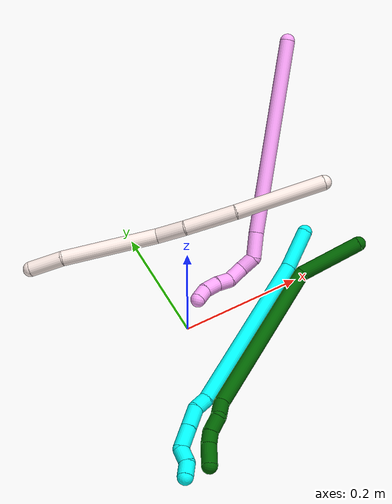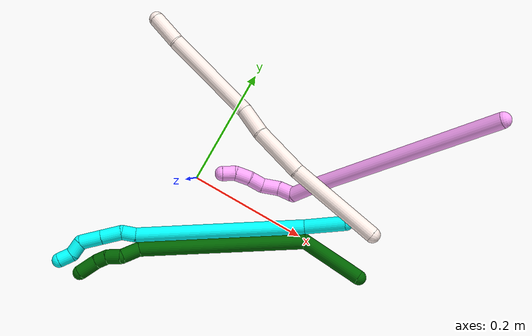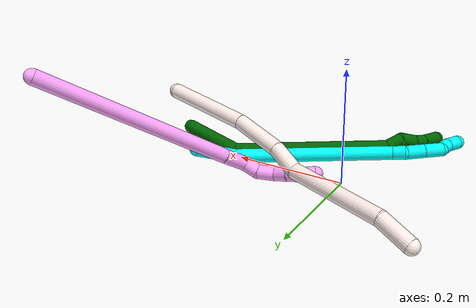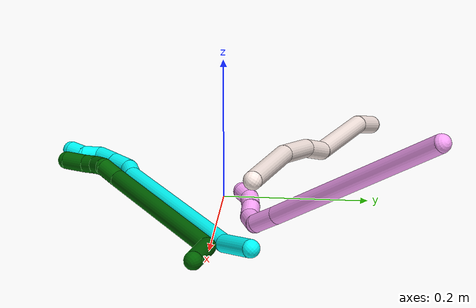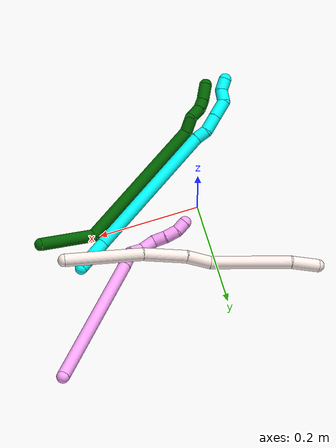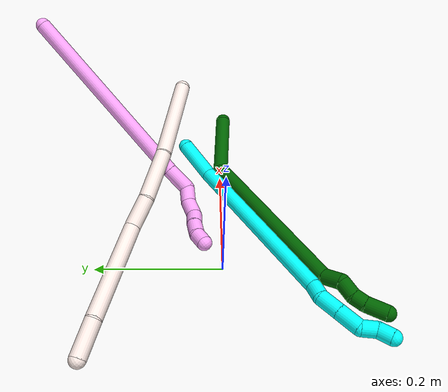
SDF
<sdf version="1.7">
 <world name="default">
  <model name="3">
   <static>0</static>
   <link name="3">
    <collision name="collision-cylinder-e_1_1_4">
     <pose>-0.024623 -0.022757 0.010895 1.12429 -0.773227 -0.502079</pose>
     <geometry><cylinder><radius>0.0125</radius><length>0.070508</length></cylinder></geometry>
     <surface>
      <friction><ode><mu>1.16</mu><mu2>1.16</mu2><slip1>0</slip1><slip2>0</slip2></ode></friction>
      <contact><ode><kp>1e+06</kp><kd>1</kd><max_vel>0</max_vel><min_depth>0.001</min_depth></ode></contact>
     </surface>
    </collision>
    <visual name="visual-cylinder-e_1_1_4">
     <pose>-0.024623 -0.022757 0.010895 1.12429 -0.773227 -0.502079</pose>
     <geometry><cylinder><radius>0.0125</radius><length>0.070508</length></cylinder></geometry>
     <material><ambient>0.003922 1 0.996078 1</ambient></material>
    </visual>
    <collision name="collision-cylinder-e_2_4_5">
     <pose>-0.158016 -0.111144 0.086388 0.793329 -0.868251 -0.383618</pose>
     <geometry><cylinder><radius>0.0125</radius><length>0.285034</length></cylinder></geometry>
     <surface>
      <friction><ode><mu>1.16</mu><mu2>1.16</mu2><slip1>0</slip1><slip2>0</slip2></ode></friction>
      <contact><ode><kp>1e+06</kp><kd>1</kd><max_vel>0</max_vel><min_depth>0.001</min_depth></ode></contact>
     </surface>
    </collision>
    <visual name="visual-cylinder-e_2_4_5">
     <pose>-0.158016 -0.111144 0.086388 0.793329 -0.868251 -0.383618</pose>
     <geometry><cylinder><radius>0.0125</radius><length>0.285034</length></cylinder></geometry>
     <material><ambient>0.003922 1 0.996078 1</ambient></material>
    </visual>
    <collision name="collision-cylinder-e_3_5_6">
     <pose>-0.277542 -0.17974 0.155494 0.581822 -1.10595 -0.365465</pose>
     <geometry><cylinder><radius>0.0125</radius><length>0.024068</length></cylinder></geometry>
     <surface>
      <friction><ode><mu>1.16</mu><mu2>1.16</mu2><slip1>0</slip1><slip2>0</slip2></ode></friction>
      <contact><ode><kp>1e+06</kp><kd>1</kd><max_vel>0</max_vel><min_depth>0.001</min_depth></ode></contact>
     </surface>
    </collision>
    <visual name="visual-cylinder-e_3_5_6">
     <pose>-0.277542 -0.17974 0.155494 0.581822 -1.10595 -0.365465</pose>
     <geometry><cylinder><radius>0.0125</radius><length>0.024068</length></cylinder></geometry>
     <material><ambient>0.003922 1 0.996078 1</ambient></material>
    </visual>
    <collision name="collision-cylinder-e_4_6_7">
     <pose>-0.299281 -0.192443 0.169395 0.803389 -0.681787 -0.299133</pose>
     <geometry><cylinder><radius>0.0125</radius><length>0.034853</length></cylinder></geometry>
     <surface>
      <friction><ode><mu>1.16</mu><mu2>1.16</mu2><slip1>0</slip1><slip2>0</slip2></ode></friction>
      <contact><ode><kp>1e+06</kp><kd>1</kd><max_vel>0</max_vel><min_depth>0.001</min_depth></ode></contact>
     </surface>
    </collision>
    <visual name="visual-cylinder-e_4_6_7">
     <pose>-0.299281 -0.192443 0.169395 0.803389 -0.681787 -0.299133</pose>
     <geometry><cylinder><radius>0.0125</radius><length>0.034853</length></cylinder></geometry>
     <material><ambient>0.003922 1 0.996078 1</ambient></material>
    </visual>
    <collision name="collision-cylinder-e_5_7_8">
     <pose>-0.321867 -0.212575 0.188661 0.811158 -0.680505 -0.301713</pose>
     <geometry><cylinder><radius>0.0125</radius><length>0.036885</length></cylinder></geometry>
     <surface>
      <friction><ode><mu>1.16</mu><mu2>1.16</mu2><slip1>0</slip1><slip2>0</slip2></ode></friction>
      <contact><ode><kp>1e+06</kp><kd>1</kd><max_vel>0</max_vel><min_depth>0.001</min_depth></ode></contact>
     </surface>
    </collision>
    <visual name="visual-cylinder-e_5_7_8">
     <pose>-0.321867 -0.212575 0.188661 0.811158 -0.680505 -0.301713</pose>
     <geometry><cylinder><radius>0.0125</radius><length>0.036885</length></cylinder></geometry>
     <material><ambient>0.003922 1 0.996078 1</ambient></material>
    </visual>
    <collision name="collision-cylinder-e_6_8_9">
     <pose>-0.333058 -0.231699 0.207286 0.784062 0.033322 0.013778</pose>
     <geometry><cylinder><radius>0.0125</radius><length>0.02474</length></cylinder></geometry>
     <surface>
      <friction><ode><mu>1.16</mu><mu2>1.16</mu2><slip1>0</slip1><slip2>0</slip2></ode></friction>
      <contact><ode><kp>1e+06</kp><kd>1</kd><max_vel>0</max_vel><min_depth>0.001</min_depth></ode></contact>
     </surface>
    </collision>
    <visual name="visual-cylinder-e_6_8_9">
     <pose>-0.333058 -0.231699 0.207286 0.784062 0.033322 0.013778</pose>
     <geometry><cylinder><radius>0.0125</radius><length>0.02474</length></cylinder></geometry>
     <material><ambient>0.003922 1 0.996078 1</ambient></material>
    </visual>
    <collision name="collision-cylinder-e_7_9_2">
     <pose>-0.338218 -0.24729 0.22409 0.70577 -0.484834 -0.181646</pose>
     <geometry><cylinder><radius>0.0125</radius><length>0.023911</length></cylinder></geometry>
     <surface>
      <friction><ode><mu>1.16</mu><mu2>1.16</mu2><slip1>0</slip1><slip2>0</slip2></ode></friction>
      <contact><ode><kp>1e+06</kp><kd>1</kd><max_vel>0</max_vel><min_depth>0.001</min_depth></ode></contact>
     </surface>
    </collision>
    <visual name="visual-cylinder-e_7_9_2">
     <pose>-0.338218 -0.24729 0.22409 0.70577 -0.484834 -0.181646</pose>
     <geometry><cylinder><radius>0.0125</radius><length>0.023911</length></cylinder></geometry>
     <material><ambient>0.003922 1 0.996078 1</ambient></material>
    </visual>
    <collision name="collision-sphere-2">
     <pose>-0.34379 -0.254151 0.232141 0 -0 0</pose>
     <geometry><sphere><radius>0.0125</radius></sphere></geometry>
     <surface>
      <friction><ode><mu>1.16</mu><mu2>1.16</mu2><slip1>0</slip1><slip2>0</slip2></ode></friction>
      <contact><ode><kp>1e+06</kp><kd>1</kd><max_vel>0</max_vel><min_depth>0.001</min_depth></ode></contact>
     </surface>
    </collision>
    <visual name="visual-sphere-2">
     <pose>-0.34379 -0.254151 0.232141 0 -0 0</pose>
     <geometry><sphere><radius>0.0125</radius></sphere></geometry>
     <material><ambient>0.003922 1 0.996078 1</ambient></material>
    </visual>
    <collision name="collision-sphere-9">
     <pose>-0.332646 -0.24043 0.21604 0 -0 0</pose>
     <geometry><sphere><radius>0.0125</radius></sphere></geometry>
     <surface>
      <friction><ode><mu>1.16</mu><mu2>1.16</mu2><slip1>0</slip1><slip2>0</slip2></ode></friction>
      <contact><ode><kp>1e+06</kp><kd>1</kd><max_vel>0</max_vel><min_depth>0.001</min_depth></ode></contact>
     </surface>
    </collision>
    <visual name="visual-sphere-9">
     <pose>-0.332646 -0.24043 0.21604 0 -0 0</pose>
     <geometry><sphere><radius>0.0125</radius></sphere></geometry>
     <material><ambient>0.003922 1 0.996078 1</ambient></material>
    </visual>
    <collision name="collision-sphere-4">
     <pose>-0.049247 -0.045513 0.02179 0 -0 0</pose>
     <geometry><sphere><radius>0.0125</radius></sphere></geometry>
     <surface>
      <friction><ode><mu>1.16</mu><mu2>1.16</mu2><slip1>0</slip1><slip2>0</slip2></ode></friction>
      <contact><ode><kp>1e+06</kp><kd>1</kd><max_vel>0</max_vel><min_depth>0.001</min_depth></ode></contact>
     </surface>
    </collision>
    <visual name="visual-sphere-4">
     <pose>-0.049247 -0.045513 0.02179 0 -0 0</pose>
     <geometry><sphere><radius>0.0125</radius></sphere></geometry>
     <material><ambient>0.003922 1 0.996078 1</ambient></material>
    </visual>
    <collision name="collision-sphere-1">
     <geometry><sphere><radius>0.0125</radius></sphere></geometry>
     <surface>
      <friction><ode><mu>1.16</mu><mu2>1.16</mu2><slip1>0</slip1><slip2>0</slip2></ode></friction>
      <contact><ode><kp>1e+06</kp><kd>1</kd><max_vel>0</max_vel><min_depth>0.001</min_depth></ode></contact>
     </surface>
    </collision>
    <visual name="visual-sphere-1">
     <geometry><sphere><radius>0.0125</radius></sphere></geometry>
     <material><ambient>0.003922 1 0.996078 1</ambient></material>
    </visual>
    <collision name="collision-sphere-8">
     <pose>-0.333471 -0.222969 0.198532 0 -0 0</pose>
     <geometry><sphere><radius>0.0125</radius></sphere></geometry>
     <surface>
      <friction><ode><mu>1.16</mu><mu2>1.16</mu2><slip1>0</slip1><slip2>0</slip2></ode></friction>
      <contact><ode><kp>1e+06</kp><kd>1</kd><max_vel>0</max_vel><min_depth>0.001</min_depth></ode></contact>
     </surface>
    </collision>
    <visual name="visual-sphere-8">
     <pose>-0.333471 -0.222969 0.198532 0 -0 0</pose>
     <geometry><sphere><radius>0.0125</radius></sphere></geometry>
     <material><ambient>0.003922 1 0.996078 1</ambient></material>
    </visual>
    <collision name="collision-sphere-5">
     <pose>-0.266785 -0.176776 0.150987 0 -0 0</pose>
     <geometry><sphere><radius>0.0125</radius></sphere></geometry>
     <surface>
      <friction><ode><mu>1.16</mu><mu2>1.16</mu2><slip1>0</slip1><slip2>0</slip2></ode></friction>
      <contact><ode><kp>1e+06</kp><kd>1</kd><max_vel>0</max_vel><min_depth>0.001</min_depth></ode></contact>
     </surface>
    </collision>
    <visual name="visual-sphere-5">
     <pose>-0.266785 -0.176776 0.150987 0 -0 0</pose>
     <geometry><sphere><radius>0.0125</radius></sphere></geometry>
     <material><ambient>0.003922 1 0.996078 1</ambient></material>
    </visual>
    <collision name="collision-sphere-6">
     <pose>-0.288299 -0.182705 0.160001 0 -0 0</pose>
     <geometry><sphere><radius>0.0125</radius></sphere></geometry>
     <surface>
      <friction><ode><mu>1.16</mu><mu2>1.16</mu2><slip1>0</slip1><slip2>0</slip2></ode></friction>
      <contact><ode><kp>1e+06</kp><kd>1</kd><max_vel>0</max_vel><min_depth>0.001</min_depth></ode></contact>
     </surface>
    </collision>
    <visual name="visual-sphere-6">
     <pose>-0.288299 -0.182705 0.160001 0 -0 0</pose>
     <geometry><sphere><radius>0.0125</radius></sphere></geometry>
     <material><ambient>0.003922 1 0.996078 1</ambient></material>
    </visual>
    <collision name="collision-sphere-7">
     <pose>-0.310263 -0.202182 0.178789 0 -0 0</pose>
     <geometry><sphere><radius>0.0125</radius></sphere></geometry>
     <surface>
      <friction><ode><mu>1.16</mu><mu2>1.16</mu2><slip1>0</slip1><slip2>0</slip2></ode></friction>
      <contact><ode><kp>1e+06</kp><kd>1</kd><max_vel>0</max_vel><min_depth>0.001</min_depth></ode></contact>
     </surface>
    </collision>
    <visual name="visual-sphere-7">
     <pose>-0.310263 -0.202182 0.178789 0 -0 0</pose>
     <geometry><sphere><radius>0.0125</radius></sphere></geometry>
     <material><ambient>0.003922 1 0.996078 1</ambient></material>
    </visual>
    <inertial>
     <pose>-0.184172 -0.127607 0.104967 0 -0 0</pose>
     <mass>0.5</mass>
     <inertia>
      <ixx>0.000685</ixx>
      <ixy>0</ixy>
      <ixz>0</ixz>
      <iyy>0.00119</iyy>
      <iyz>0</iyz>
      <izz>0.002455</izz>
     </inertia>
    </inertial>
   </link>
   <pose>0.255427 0.059848 0.028089 0.812248 0.029429 -0.13285</pose>
  </model>
  <model name="4">
   <static>0</static>
   <link name="4">
    <collision name="collision-cylinder-e_1_1_4">
     <pose>0.010933 -0.008505 -0.163945 3.08976 0.066501 1.81768</pose>
     <geometry><cylinder><radius>0.0125</radius><length>0.329058</length></cylinder></geometry>
     <surface>
      <friction><ode><mu>1.16</mu><mu2>1.16</mu2><slip1>0</slip1><slip2>0</slip2></ode></friction>
      <contact><ode><kp>1e+06</kp><kd>1</kd><max_vel>0</max_vel><min_depth>0.001</min_depth></ode></contact>
     </surface>
    </collision>
    <visual name="visual-cylinder-e_1_1_4">
     <pose>0.010933 -0.008505 -0.163945 3.08976 0.066501 1.81768</pose>
     <geometry><cylinder><radius>0.0125</radius><length>0.329058</length></cylinder></geometry>
     <material><ambient>1 0.65098 0.996078 1</ambient></material>
    </visual>
    <collision name="collision-cylinder-e_2_4_5">
     <pose>0.023827 -0.019169 -0.348842 3.03885 0.092814 1.46914</pose>
     <geometry><cylinder><radius>0.0125</radius><length>0.042309</length></cylinder></geometry>
     <surface>
      <friction><ode><mu>1.16</mu><mu2>1.16</mu2><slip1>0</slip1><slip2>0</slip2></ode></friction>
      <contact><ode><kp>1e+06</kp><kd>1</kd><max_vel>0</max_vel><min_depth>0.001</min_depth></ode></contact>
     </surface>
    </collision>
    <visual name="visual-cylinder-e_2_4_5">
     <pose>0.023827 -0.019169 -0.348842 3.03885 0.092814 1.46914</pose>
     <geometry><cylinder><radius>0.0125</radius><length>0.042309</length></cylinder></geometry>
     <material><ambient>1 0.65098 0.996078 1</ambient></material>
    </visual>
    <collision name="collision-cylinder-e_3_5_6">
     <pose>0.020549 -0.015917 -0.380524 -2.67437 -0.411053 1.43889</pose>
     <geometry><cylinder><radius>0.0125</radius><length>0.02622</length></cylinder></geometry>
     <surface>
      <friction><ode><mu>1.16</mu><mu2>1.16</mu2><slip1>0</slip1><slip2>0</slip2></ode></friction>
      <contact><ode><kp>1e+06</kp><kd>1</kd><max_vel>0</max_vel><min_depth>0.001</min_depth></ode></contact>
     </surface>
    </collision>
    <visual name="visual-cylinder-e_3_5_6">
     <pose>0.020549 -0.015917 -0.380524 -2.67437 -0.411053 1.43889</pose>
     <geometry><cylinder><radius>0.0125</radius><length>0.02622</length></cylinder></geometry>
     <material><ambient>1 0.65098 0.996078 1</ambient></material>
    </visual>
    <collision name="collision-cylinder-e_4_6_7">
     <pose>0.006178 -0.010008 -0.403276 -3.10039 -0.649236 3.0193</pose>
     <geometry><cylinder><radius>0.0125</radius><length>0.030211</length></cylinder></geometry>
     <surface>
      <friction><ode><mu>1.16</mu><mu2>1.16</mu2><slip1>0</slip1><slip2>0</slip2></ode></friction>
      <contact><ode><kp>1e+06</kp><kd>1</kd><max_vel>0</max_vel><min_depth>0.001</min_depth></ode></contact>
     </surface>
    </collision>
    <visual name="visual-cylinder-e_4_6_7">
     <pose>0.006178 -0.010008 -0.403276 -3.10039 -0.649236 3.0193</pose>
     <geometry><cylinder><radius>0.0125</radius><length>0.030211</length></cylinder></geometry>
     <material><ambient>1 0.65098 0.996078 1</ambient></material>
    </visual>
    <collision name="collision-cylinder-e_5_7_8">
     <pose>-0.013529 -0.00768 -0.421255 -2.8431 -1.03823 2.62695</pose>
     <geometry><cylinder><radius>0.0125</radius><length>0.024549</length></cylinder></geometry>
     <surface>
      <friction><ode><mu>1.16</mu><mu2>1.16</mu2><slip1>0</slip1><slip2>0</slip2></ode></friction>
      <contact><ode><kp>1e+06</kp><kd>1</kd><max_vel>0</max_vel><min_depth>0.001</min_depth></ode></contact>
     </surface>
    </collision>
    <visual name="visual-cylinder-e_5_7_8">
     <pose>-0.013529 -0.00768 -0.421255 -2.8431 -1.03823 2.62695</pose>
     <geometry><cylinder><radius>0.0125</radius><length>0.024549</length></cylinder></geometry>
     <material><ambient>1 0.65098 0.996078 1</ambient></material>
    </visual>
    <collision name="collision-cylinder-e_6_8_9">
     <pose>-0.034067 -0.004912 -0.435301 -3.02651 -0.885625 2.89983</pose>
     <geometry><cylinder><radius>0.0125</radius><length>0.025735</length></cylinder></geometry>
     <surface>
      <friction><ode><mu>1.16</mu><mu2>1.16</mu2><slip1>0</slip1><slip2>0</slip2></ode></friction>
      <contact><ode><kp>1e+06</kp><kd>1</kd><max_vel>0</max_vel><min_depth>0.001</min_depth></ode></contact>
     </surface>
    </collision>
    <visual name="visual-cylinder-e_6_8_9">
     <pose>-0.034067 -0.004912 -0.435301 -3.02651 -0.885625 2.89983</pose>
     <geometry><cylinder><radius>0.0125</radius><length>0.025735</length></cylinder></geometry>
     <material><ambient>1 0.65098 0.996078 1</ambient></material>
    </visual>
    <collision name="collision-cylinder-e_7_9_2">
     <pose>-0.050324 -0.006198 -0.452082 2.89148 -0.611669 -2.38376</pose>
     <geometry><cylinder><radius>0.0125</radius><length>0.021917</length></cylinder></geometry>
     <surface>
      <friction><ode><mu>1.16</mu><mu2>1.16</mu2><slip1>0</slip1><slip2>0</slip2></ode></friction>
      <contact><ode><kp>1e+06</kp><kd>1</kd><max_vel>0</max_vel><min_depth>0.001</min_depth></ode></contact>
     </surface>
    </collision>
    <visual name="visual-cylinder-e_7_9_2">
     <pose>-0.050324 -0.006198 -0.452082 2.89148 -0.611669 -2.38376</pose>
     <geometry><cylinder><radius>0.0125</radius><length>0.021917</length></cylinder></geometry>
     <material><ambient>1 0.65098 0.996078 1</ambient></material>
    </visual>
    <collision name="collision-sphere-2">
     <pose>-0.056616 -0.008418 -0.460775 0 -0 0</pose>
     <geometry><sphere><radius>0.0125</radius></sphere></geometry>
     <surface>
      <friction><ode><mu>1.16</mu><mu2>1.16</mu2><slip1>0</slip1><slip2>0</slip2></ode></friction>
      <contact><ode><kp>1e+06</kp><kd>1</kd><max_vel>0</max_vel><min_depth>0.001</min_depth></ode></contact>
     </surface>
    </collision>
    <visual name="visual-sphere-2">
     <pose>-0.056616 -0.008418 -0.460775 0 -0 0</pose>
     <geometry><sphere><radius>0.0125</radius></sphere></geometry>
     <material><ambient>1 0.65098 0.996078 1</ambient></material>
    </visual>
    <collision name="collision-sphere-9">
     <pose>-0.044031 -0.003977 -0.44339 0 -0 0</pose>
     <geometry><sphere><radius>0.0125</radius></sphere></geometry>
     <surface>
      <friction><ode><mu>1.16</mu><mu2>1.16</mu2><slip1>0</slip1><slip2>0</slip2></ode></friction>
      <contact><ode><kp>1e+06</kp><kd>1</kd><max_vel>0</max_vel><min_depth>0.001</min_depth></ode></contact>
     </surface>
    </collision>
    <visual name="visual-sphere-9">
     <pose>-0.044031 -0.003977 -0.44339 0 -0 0</pose>
     <geometry><sphere><radius>0.0125</radius></sphere></geometry>
     <material><ambient>1 0.65098 0.996078 1</ambient></material>
    </visual>
    <collision name="collision-sphere-4">
     <pose>0.021866 -0.017009 -0.32789 0 -0 0</pose>
     <geometry><sphere><radius>0.0125</radius></sphere></geometry>
     <surface>
      <friction><ode><mu>1.16</mu><mu2>1.16</mu2><slip1>0</slip1><slip2>0</slip2></ode></friction>
      <contact><ode><kp>1e+06</kp><kd>1</kd><max_vel>0</max_vel><min_depth>0.001</min_depth></ode></contact>
     </surface>
    </collision>
    <visual name="visual-sphere-4">
     <pose>0.021866 -0.017009 -0.32789 0 -0 0</pose>
     <geometry><sphere><radius>0.0125</radius></sphere></geometry>
     <material><ambient>1 0.65098 0.996078 1</ambient></material>
    </visual>
    <collision name="collision-sphere-1">
     <geometry><sphere><radius>0.0125</radius></sphere></geometry>
     <surface>
      <friction><ode><mu>1.16</mu><mu2>1.16</mu2><slip1>0</slip1><slip2>0</slip2></ode></friction>
      <contact><ode><kp>1e+06</kp><kd>1</kd><max_vel>0</max_vel><min_depth>0.001</min_depth></ode></contact>
     </surface>
    </collision>
    <visual name="visual-sphere-1">
     <geometry><sphere><radius>0.0125</radius></sphere></geometry>
     <material><ambient>1 0.65098 0.996078 1</ambient></material>
    </visual>
    <collision name="collision-sphere-8">
     <pose>-0.024104 -0.005847 -0.427212 0 -0 0</pose>
     <geometry><sphere><radius>0.0125</radius></sphere></geometry>
     <surface>
      <friction><ode><mu>1.16</mu><mu2>1.16</mu2><slip1>0</slip1><slip2>0</slip2></ode></friction>
      <contact><ode><kp>1e+06</kp><kd>1</kd><max_vel>0</max_vel><min_depth>0.001</min_depth></ode></contact>
     </surface>
    </collision>
    <visual name="visual-sphere-8">
     <pose>-0.024104 -0.005847 -0.427212 0 -0 0</pose>
     <geometry><sphere><radius>0.0125</radius></sphere></geometry>
     <material><ambient>1 0.65098 0.996078 1</ambient></material>
    </visual>
    <collision name="collision-sphere-5">
     <pose>0.025788 -0.02133 -0.369794 0 -0 0</pose>
     <geometry><sphere><radius>0.0125</radius></sphere></geometry>
     <surface>
      <friction><ode><mu>1.16</mu><mu2>1.16</mu2><slip1>0</slip1><slip2>0</slip2></ode></friction>
      <contact><ode><kp>1e+06</kp><kd>1</kd><max_vel>0</max_vel><min_depth>0.001</min_depth></ode></contact>
     </surface>
    </collision>
    <visual name="visual-sphere-5">
     <pose>0.025788 -0.02133 -0.369794 0 -0 0</pose>
     <geometry><sphere><radius>0.0125</radius></sphere></geometry>
     <material><ambient>1 0.65098 0.996078 1</ambient></material>
    </visual>
    <collision name="collision-sphere-6">
     <pose>0.015311 -0.010504 -0.391254 0 -0 0</pose>
     <geometry><sphere><radius>0.0125</radius></sphere></geometry>
     <surface>
      <friction><ode><mu>1.16</mu><mu2>1.16</mu2><slip1>0</slip1><slip2>0</slip2></ode></friction>
      <contact><ode><kp>1e+06</kp><kd>1</kd><max_vel>0</max_vel><min_depth>0.001</min_depth></ode></contact>
     </surface>
    </collision>
    <visual name="visual-sphere-6">
     <pose>0.015311 -0.010504 -0.391254 0 -0 0</pose>
     <geometry><sphere><radius>0.0125</radius></sphere></geometry>
     <material><ambient>1 0.65098 0.996078 1</ambient></material>
    </visual>
    <collision name="collision-sphere-7">
     <pose>-0.002954 -0.009513 -0.415298 0 -0 0</pose>
     <geometry><sphere><radius>0.0125</radius></sphere></geometry>
     <surface>
      <friction><ode><mu>1.16</mu><mu2>1.16</mu2><slip1>0</slip1><slip2>0</slip2></ode></friction>
      <contact><ode><kp>1e+06</kp><kd>1</kd><max_vel>0</max_vel><min_depth>0.001</min_depth></ode></contact>
     </surface>
    </collision>
    <visual name="visual-sphere-7">
     <pose>-0.002954 -0.009513 -0.415298 0 -0 0</pose>
     <geometry><sphere><radius>0.0125</radius></sphere></geometry>
     <material><ambient>1 0.65098 0.996078 1</ambient></material>
    </visual>
    <inertial>
     <pose>0.006039 -0.00956 -0.24464 0 -0 0</pose>
     <mass>0.5</mass>
     <inertia>
      <ixx>0.002159</ixx>
      <ixy>0</ixy>
      <ixz>0</ixz>
      <iyy>0.003642</iyy>
      <iyz>0</iyz>
      <izz>-7.3e-05</izz>
     </inertia>
    </inertial>
   </link>
   <pose>0.355668 0.302444 0.216655 -0.840473 0.696617 -0.268955</pose>
  </model>
  <model name="6">
   <static>0</static>
   <link name="6">
    <collision name="collision-cylinder-e_1_1_4">
     <pose>-0.033594 0.007386 0.041311 -0.176917 -0.675046 0.062232</pose>
     <geometry><cylinder><radius>0.0125</radius><length>0.107513</length></cylinder></geometry>
     <surface>
      <friction><ode><mu>1.16</mu><mu2>1.16</mu2><slip1>0</slip1><slip2>0</slip2></ode></friction>
      <contact><ode><kp>1e+06</kp><kd>1</kd><max_vel>0</max_vel><min_depth>0.001</min_depth></ode></contact>
     </surface>
    </collision>
    <visual name="visual-cylinder-e_1_1_4">
     <pose>-0.033594 0.007386 0.041311 -0.176917 -0.675046 0.062232</pose>
     <geometry><cylinder><radius>0.0125</radius><length>0.107513</length></cylinder></geometry>
     <material><ambient>0 0.392157 0.003922 1</ambient></material>
    </visual>
    <collision name="collision-cylinder-e_2_4_5">
     <pose>-0.191393 -0.02628 0.133159 0.682211 -1.08797 -0.423006</pose>
     <geometry><cylinder><radius>0.0125</radius><length>0.280469</length></cylinder></geometry>
     <surface>
      <friction><ode><mu>1.16</mu><mu2>1.16</mu2><slip1>0</slip1><slip2>0</slip2></ode></friction>
      <contact><ode><kp>1e+06</kp><kd>1</kd><max_vel>0</max_vel><min_depth>0.001</min_depth></ode></contact>
     </surface>
    </collision>
    <visual name="visual-cylinder-e_2_4_5">
     <pose>-0.191393 -0.02628 0.133159 0.682211 -1.08797 -0.423006</pose>
     <geometry><cylinder><radius>0.0125</radius><length>0.280469</length></cylinder></geometry>
     <material><ambient>0 0.392157 0.003922 1</ambient></material>
    </visual>
    <collision name="collision-cylinder-e_3_5_6">
     <pose>-0.327402 -0.077561 0.185148 1.4297 -0.851834 -0.750298</pose>
     <geometry><cylinder><radius>0.0125</radius><length>0.031376</length></cylinder></geometry>
     <surface>
      <friction><ode><mu>1.16</mu><mu2>1.16</mu2><slip1>0</slip1><slip2>0</slip2></ode></friction>
      <contact><ode><kp>1e+06</kp><kd>1</kd><max_vel>0</max_vel><min_depth>0.001</min_depth></ode></contact>
     </surface>
    </collision>
    <visual name="visual-cylinder-e_3_5_6">
     <pose>-0.327402 -0.077561 0.185148 1.4297 -0.851834 -0.750298</pose>
     <geometry><cylinder><radius>0.0125</radius><length>0.031376</length></cylinder></geometry>
     <material><ambient>0 0.392157 0.003922 1</ambient></material>
    </visual>
    <collision name="collision-cylinder-e_4_6_7">
     <pose>-0.351504 -0.088945 0.190509 0.287359 -1.25083 -0.20819</pose>
     <geometry><cylinder><radius>0.0125</radius><length>0.02591</length></cylinder></geometry>
     <surface>
      <friction><ode><mu>1.16</mu><mu2>1.16</mu2><slip1>0</slip1><slip2>0</slip2></ode></friction>
      <contact><ode><kp>1e+06</kp><kd>1</kd><max_vel>0</max_vel><min_depth>0.001</min_depth></ode></contact>
     </surface>
    </collision>
    <visual name="visual-cylinder-e_4_6_7">
     <pose>-0.351504 -0.088945 0.190509 0.287359 -1.25083 -0.20819</pose>
     <geometry><cylinder><radius>0.0125</radius><length>0.02591</length></cylinder></geometry>
     <material><ambient>0 0.392157 0.003922 1</ambient></material>
    </visual>
    <collision name="collision-cylinder-e_5_7_8">
     <pose>-0.373769 -0.092405 0.194211 1.65973 -1.34269 -1.4302</pose>
     <geometry><cylinder><radius>0.0125</radius><length>0.020466</length></cylinder></geometry>
     <surface>
      <friction><ode><mu>1.16</mu><mu2>1.16</mu2><slip1>0</slip1><slip2>0</slip2></ode></friction>
      <contact><ode><kp>1e+06</kp><kd>1</kd><max_vel>0</max_vel><min_depth>0.001</min_depth></ode></contact>
     </surface>
    </collision>
    <visual name="visual-cylinder-e_5_7_8">
     <pose>-0.373769 -0.092405 0.194211 1.65973 -1.34269 -1.4302</pose>
     <geometry><cylinder><radius>0.0125</radius><length>0.020466</length></cylinder></geometry>
     <material><ambient>0 0.392157 0.003922 1</ambient></material>
    </visual>
    <collision name="collision-cylinder-e_6_8_2">
     <pose>-0.399434 -0.100976 0.191194 1.99257 -1.15837 -1.58101</pose>
     <geometry><cylinder><radius>0.0125</radius><length>0.034266</length></cylinder></geometry>
     <surface>
      <friction><ode><mu>1.16</mu><mu2>1.16</mu2><slip1>0</slip1><slip2>0</slip2></ode></friction>
      <contact><ode><kp>1e+06</kp><kd>1</kd><max_vel>0</max_vel><min_depth>0.001</min_depth></ode></contact>
     </surface>
    </collision>
    <visual name="visual-cylinder-e_6_8_2">
     <pose>-0.399434 -0.100976 0.191194 1.99257 -1.15837 -1.58101</pose>
     <geometry><cylinder><radius>0.0125</radius><length>0.034266</length></cylinder></geometry>
     <material><ambient>0 0.392157 0.003922 1</ambient></material>
    </visual>
    <collision name="collision-sphere-2">
     <pose>-0.41513 -0.107241 0.188382 0 -0 0</pose>
     <geometry><sphere><radius>0.0125</radius></sphere></geometry>
     <surface>
      <friction><ode><mu>1.16</mu><mu2>1.16</mu2><slip1>0</slip1><slip2>0</slip2></ode></friction>
      <contact><ode><kp>1e+06</kp><kd>1</kd><max_vel>0</max_vel><min_depth>0.001</min_depth></ode></contact>
     </surface>
    </collision>
    <visual name="visual-sphere-2">
     <pose>-0.41513 -0.107241 0.188382 0 -0 0</pose>
     <geometry><sphere><radius>0.0125</radius></sphere></geometry>
     <material><ambient>0 0.392157 0.003922 1</ambient></material>
    </visual>
    <collision name="collision-sphere-4">
     <pose>-0.067188 0.014772 0.082623 0 -0 0</pose>
     <geometry><sphere><radius>0.0125</radius></sphere></geometry>
     <surface>
      <friction><ode><mu>1.16</mu><mu2>1.16</mu2><slip1>0</slip1><slip2>0</slip2></ode></friction>
      <contact><ode><kp>1e+06</kp><kd>1</kd><max_vel>0</max_vel><min_depth>0.001</min_depth></ode></contact>
     </surface>
    </collision>
    <visual name="visual-sphere-4">
     <pose>-0.067188 0.014772 0.082623 0 -0 0</pose>
     <geometry><sphere><radius>0.0125</radius></sphere></geometry>
     <material><ambient>0 0.392157 0.003922 1</ambient></material>
    </visual>
    <collision name="collision-sphere-1">
     <geometry><sphere><radius>0.0125</radius></sphere></geometry>
     <surface>
      <friction><ode><mu>1.16</mu><mu2>1.16</mu2><slip1>0</slip1><slip2>0</slip2></ode></friction>
      <contact><ode><kp>1e+06</kp><kd>1</kd><max_vel>0</max_vel><min_depth>0.001</min_depth></ode></contact>
     </surface>
    </collision>
    <visual name="visual-sphere-1">
     <geometry><sphere><radius>0.0125</radius></sphere></geometry>
     <material><ambient>0 0.392157 0.003922 1</ambient></material>
    </visual>
    <collision name="collision-sphere-8">
     <pose>-0.383737 -0.09471 0.194005 0 -0 0</pose>
     <geometry><sphere><radius>0.0125</radius></sphere></geometry>
     <surface>
      <friction><ode><mu>1.16</mu><mu2>1.16</mu2><slip1>0</slip1><slip2>0</slip2></ode></friction>
      <contact><ode><kp>1e+06</kp><kd>1</kd><max_vel>0</max_vel><min_depth>0.001</min_depth></ode></contact>
     </surface>
    </collision>
    <visual name="visual-sphere-8">
     <pose>-0.383737 -0.09471 0.194005 0 -0 0</pose>
     <geometry><sphere><radius>0.0125</radius></sphere></geometry>
     <material><ambient>0 0.392157 0.003922 1</ambient></material>
    </visual>
    <collision name="collision-sphere-5">
     <pose>-0.315597 -0.067331 0.183695 0 -0 0</pose>
     <geometry><sphere><radius>0.0125</radius></sphere></geometry>
     <surface>
      <friction><ode><mu>1.16</mu><mu2>1.16</mu2><slip1>0</slip1><slip2>0</slip2></ode></friction>
      <contact><ode><kp>1e+06</kp><kd>1</kd><max_vel>0</max_vel><min_depth>0.001</min_depth></ode></contact>
     </surface>
    </collision>
    <visual name="visual-sphere-5">
     <pose>-0.315597 -0.067331 0.183695 0 -0 0</pose>
     <geometry><sphere><radius>0.0125</radius></sphere></geometry>
     <material><ambient>0 0.392157 0.003922 1</ambient></material>
    </visual>
    <collision name="collision-sphere-6">
     <pose>-0.339207 -0.08779 0.186601 0 -0 0</pose>
     <geometry><sphere><radius>0.0125</radius></sphere></geometry>
     <surface>
      <friction><ode><mu>1.16</mu><mu2>1.16</mu2><slip1>0</slip1><slip2>0</slip2></ode></friction>
      <contact><ode><kp>1e+06</kp><kd>1</kd><max_vel>0</max_vel><min_depth>0.001</min_depth></ode></contact>
     </surface>
    </collision>
    <visual name="visual-sphere-6">
     <pose>-0.339207 -0.08779 0.186601 0 -0 0</pose>
     <geometry><sphere><radius>0.0125</radius></sphere></geometry>
     <material><ambient>0 0.392157 0.003922 1</ambient></material>
    </visual>
    <collision name="collision-sphere-7">
     <pose>-0.363801 -0.0901 0.194416 0 -0 0</pose>
     <geometry><sphere><radius>0.0125</radius></sphere></geometry>
     <surface>
      <friction><ode><mu>1.16</mu><mu2>1.16</mu2><slip1>0</slip1><slip2>0</slip2></ode></friction>
      <contact><ode><kp>1e+06</kp><kd>1</kd><max_vel>0</max_vel><min_depth>0.001</min_depth></ode></contact>
     </surface>
    </collision>
    <visual name="visual-sphere-7">
     <pose>-0.363801 -0.0901 0.194416 0 -0 0</pose>
     <geometry><sphere><radius>0.0125</radius></sphere></geometry>
     <material><ambient>0 0.392157 0.003922 1</ambient></material>
    </visual>
    <inertial>
     <pose>-0.196016 -0.033332 0.12612 0 -0 0</pose>
     <mass>0.5</mass>
     <inertia>
      <ixx>0.000486</ixx>
      <ixy>0</ixy>
      <ixz>0</ixz>
      <iyy>0.00149</iyy>
      <iyz>0</iyz>
      <izz>0.002262</izz>
     </inertia>
    </inertial>
   </link>
   <pose>0.317815 -0.007948 0.034667 -1.37021 -0.38146 0.864844</pose>
  </model>
  <model name="11">
   <static>0</static>
   <link name="11">
    <collision name="collision-cylinder-e_1_1_4">
     <pose>-0.067758 0.016444 -0.03037 -2.64533 -1.09942 2.35741</pose>
     <geometry><cylinder><radius>0.0125</radius><length>0.152104</length></cylinder></geometry>
     <surface>
      <friction><ode><mu>1.16</mu><mu2>1.16</mu2><slip1>0</slip1><slip2>0</slip2></ode></friction>
      <contact><ode><kp>1e+06</kp><kd>1</kd><max_vel>0</max_vel><min_depth>0.001</min_depth></ode></contact>
     </surface>
    </collision>
    <visual name="visual-cylinder-e_1_1_4">
     <pose>-0.067758 0.016444 -0.03037 -2.64533 -1.09942 2.35741</pose>
     <geometry><cylinder><radius>0.0125</radius><length>0.152104</length></cylinder></geometry>
     <material><ambient>1 0.933333 0.909804 1</ambient></material>
    </visual>
    <collision name="collision-cylinder-e_2_4_5">
     <pose>-0.170834 0.04039 -0.083405 -2.82198 -0.976392 2.55226</pose>
     <geometry><cylinder><radius>0.0125</radius><length>0.085259</length></cylinder></geometry>
     <surface>
      <friction><ode><mu>1.16</mu><mu2>1.16</mu2><slip1>0</slip1><slip2>0</slip2></ode></friction>
      <contact><ode><kp>1e+06</kp><kd>1</kd><max_vel>0</max_vel><min_depth>0.001</min_depth></ode></contact>
     </surface>
    </collision>
    <visual name="visual-cylinder-e_2_4_5">
     <pose>-0.170834 0.04039 -0.083405 -2.82198 -0.976392 2.55226</pose>
     <geometry><cylinder><radius>0.0125</radius><length>0.085259</length></cylinder></geometry>
     <material><ambient>1 0.933333 0.909804 1</ambient></material>
    </visual>
    <collision name="collision-cylinder-e_3_5_6">
     <pose>-0.223813 0.050717 -0.123076 -2.9769 -0.79747 2.7547</pose>
     <geometry><cylinder><radius>0.0125</radius><length>0.049362</length></cylinder></geometry>
     <surface>
      <friction><ode><mu>1.16</mu><mu2>1.16</mu2><slip1>0</slip1><slip2>0</slip2></ode></friction>
      <contact><ode><kp>1e+06</kp><kd>1</kd><max_vel>0</max_vel><min_depth>0.001</min_depth></ode></contact>
     </surface>
    </collision>
    <visual name="visual-cylinder-e_3_5_6">
     <pose>-0.223813 0.050717 -0.123076 -2.9769 -0.79747 2.7547</pose>
     <geometry><cylinder><radius>0.0125</radius><length>0.049362</length></cylinder></geometry>
     <material><ambient>1 0.933333 0.909804 1</ambient></material>
    </visual>
    <collision name="collision-cylinder-e_4_6_7">
     <pose>-0.3085 0.076216 -0.174994 -2.56562 -1.01503 2.1627</pose>
     <geometry><cylinder><radius>0.0125</radius><length>0.1578</length></cylinder></geometry>
     <surface>
      <friction><ode><mu>1.16</mu><mu2>1.16</mu2><slip1>0</slip1><slip2>0</slip2></ode></friction>
      <contact><ode><kp>1e+06</kp><kd>1</kd><max_vel>0</max_vel><min_depth>0.001</min_depth></ode></contact>
     </surface>
    </collision>
    <visual name="visual-cylinder-e_4_6_7">
     <pose>-0.3085 0.076216 -0.174994 -2.56562 -1.01503 2.1627</pose>
     <geometry><cylinder><radius>0.0125</radius><length>0.1578</length></cylinder></geometry>
     <material><ambient>1 0.933333 0.909804 1</ambient></material>
    </visual>
    <collision name="collision-cylinder-e_5_7_2">
     <pose>-0.397427 0.102265 -0.226586 -2.94186 -0.910211 2.73767</pose>
     <geometry><cylinder><radius>0.0125</radius><length>0.055475</length></cylinder></geometry>
     <surface>
      <friction><ode><mu>1.16</mu><mu2>1.16</mu2><slip1>0</slip1><slip2>0</slip2></ode></friction>
      <contact><ode><kp>1e+06</kp><kd>1</kd><max_vel>0</max_vel><min_depth>0.001</min_depth></ode></contact>
     </surface>
    </collision>
    <visual name="visual-cylinder-e_5_7_2">
     <pose>-0.397427 0.102265 -0.226586 -2.94186 -0.910211 2.73767</pose>
     <geometry><cylinder><radius>0.0125</radius><length>0.055475</length></cylinder></geometry>
     <material><ambient>1 0.933333 0.909804 1</ambient></material>
    </visual>
    <collision name="collision-sphere-2">
     <pose>-0.41933 0.105642 -0.243266 0 -0 0</pose>
     <geometry><sphere><radius>0.0125</radius></sphere></geometry>
     <surface>
      <friction><ode><mu>1.16</mu><mu2>1.16</mu2><slip1>0</slip1><slip2>0</slip2></ode></friction>
      <contact><ode><kp>1e+06</kp><kd>1</kd><max_vel>0</max_vel><min_depth>0.001</min_depth></ode></contact>
     </surface>
    </collision>
    <visual name="visual-sphere-2">
     <pose>-0.41933 0.105642 -0.243266 0 -0 0</pose>
     <geometry><sphere><radius>0.0125</radius></sphere></geometry>
     <material><ambient>1 0.933333 0.909804 1</ambient></material>
    </visual>
    <collision name="collision-sphere-7">
     <pose>-0.375525 0.098888 -0.209905 0 -0 0</pose>
     <geometry><sphere><radius>0.0125</radius></sphere></geometry>
     <surface>
      <friction><ode><mu>1.16</mu><mu2>1.16</mu2><slip1>0</slip1><slip2>0</slip2></ode></friction>
      <contact><ode><kp>1e+06</kp><kd>1</kd><max_vel>0</max_vel><min_depth>0.001</min_depth></ode></contact>
     </surface>
    </collision>
    <visual name="visual-sphere-7">
     <pose>-0.375525 0.098888 -0.209905 0 -0 0</pose>
     <geometry><sphere><radius>0.0125</radius></sphere></geometry>
     <material><ambient>1 0.933333 0.909804 1</ambient></material>
    </visual>
    <collision name="collision-sphere-6">
     <pose>-0.241474 0.053544 -0.140082 0 -0 0</pose>
     <geometry><sphere><radius>0.0125</radius></sphere></geometry>
     <surface>
      <friction><ode><mu>1.16</mu><mu2>1.16</mu2><slip1>0</slip1><slip2>0</slip2></ode></friction>
      <contact><ode><kp>1e+06</kp><kd>1</kd><max_vel>0</max_vel><min_depth>0.001</min_depth></ode></contact>
     </surface>
    </collision>
    <visual name="visual-sphere-6">
     <pose>-0.241474 0.053544 -0.140082 0 -0 0</pose>
     <geometry><sphere><radius>0.0125</radius></sphere></geometry>
     <material><ambient>1 0.933333 0.909804 1</ambient></material>
    </visual>
    <collision name="collision-sphere-5">
     <pose>-0.206152 0.047891 -0.106069 0 -0 0</pose>
     <geometry><sphere><radius>0.0125</radius></sphere></geometry>
     <surface>
      <friction><ode><mu>1.16</mu><mu2>1.16</mu2><slip1>0</slip1><slip2>0</slip2></ode></friction>
      <contact><ode><kp>1e+06</kp><kd>1</kd><max_vel>0</max_vel><min_depth>0.001</min_depth></ode></contact>
     </surface>
    </collision>
    <visual name="visual-sphere-5">
     <pose>-0.206152 0.047891 -0.106069 0 -0 0</pose>
     <geometry><sphere><radius>0.0125</radius></sphere></geometry>
     <material><ambient>1 0.933333 0.909804 1</ambient></material>
    </visual>
    <collision name="collision-sphere-1">
     <geometry><sphere><radius>0.0125</radius></sphere></geometry>
     <surface>
      <friction><ode><mu>1.16</mu><mu2>1.16</mu2><slip1>0</slip1><slip2>0</slip2></ode></friction>
      <contact><ode><kp>1e+06</kp><kd>1</kd><max_vel>0</max_vel><min_depth>0.001</min_depth></ode></contact>
     </surface>
    </collision>
    <visual name="visual-sphere-1">
     <geometry><sphere><radius>0.0125</radius></sphere></geometry>
     <material><ambient>1 0.933333 0.909804 1</ambient></material>
    </visual>
    <collision name="collision-sphere-4">
     <pose>-0.135516 0.032889 -0.060741 0 -0 0</pose>
     <geometry><sphere><radius>0.0125</radius></sphere></geometry>
     <surface>
      <friction><ode><mu>1.16</mu><mu2>1.16</mu2><slip1>0</slip1><slip2>0</slip2></ode></friction>
      <contact><ode><kp>1e+06</kp><kd>1</kd><max_vel>0</max_vel><min_depth>0.001</min_depth></ode></contact>
     </surface>
    </collision>
    <visual name="visual-sphere-4">
     <pose>-0.135516 0.032889 -0.060741 0 -0 0</pose>
     <geometry><sphere><radius>0.0125</radius></sphere></geometry>
     <material><ambient>1 0.933333 0.909804 1</ambient></material>
    </visual>
    <inertial>
     <pose>-0.213296 0.052297 -0.115979 0 -0 0</pose>
     <mass>0.5</mass>
     <inertia><ixx>-3e-06</ixx><ixy>0</ixy><ixz>0</ixz><iyy>0.000913</iyy><iyz>0</iyz><izz>0.000424</izz></inertia>
    </inertial>
   </link>
   <pose>0.286988 0.065221 0.134388 0.922528 -0.056886 0.283817</pose>
  </model>
 </world>
</sdf>
